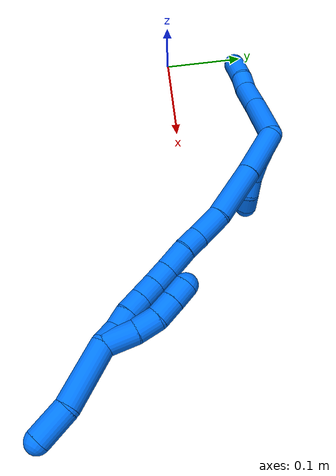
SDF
<sdf version="1.7">
 <world name="default">
  <model name="14">
   <static>0</static>
   <link name="14">
    <collision name="collision-cylinder-e_1_2_8">
     <pose>-0.012714 -0.015619 -0.021183 2.50625 -0.450024 -1.21623</pose>
     <geometry><cylinder><radius>0.0125</radius><length>0.058457</length></cylinder></geometry>
     <surface>
      <friction><ode><mu>1.16</mu><mu2>1.16</mu2><slip1>0</slip1><slip2>0</slip2></ode></friction>
      <contact><ode><kp>1e+06</kp><kd>1</kd><max_vel>0</max_vel><min_depth>0.001</min_depth></ode></contact>
     </surface>
    </collision>
    <visual name="visual-cylinder-e_1_2_8">
     <pose>-0.012714 -0.015619 -0.021183 2.50625 -0.450024 -1.21623</pose>
     <geometry><cylinder><radius>0.0125</radius><length>0.058457</length></cylinder></geometry>
     <material><ambient>0 0.462745 1 1</ambient></material>
    </visual>
    <collision name="collision-cylinder-e_2_8_9">
     <pose>-0.034335 -0.041021 -0.055546 2.50307 -0.497196 -1.30973</pose>
     <geometry><cylinder><radius>0.0125</radius><length>0.037351</length></cylinder></geometry>
     <surface>
      <friction><ode><mu>1.16</mu><mu2>1.16</mu2><slip1>0</slip1><slip2>0</slip2></ode></friction>
      <contact><ode><kp>1e+06</kp><kd>1</kd><max_vel>0</max_vel><min_depth>0.001</min_depth></ode></contact>
     </surface>
    </collision>
    <visual name="visual-cylinder-e_2_8_9">
     <pose>-0.034335 -0.041021 -0.055546 2.50307 -0.497196 -1.30973</pose>
     <geometry><cylinder><radius>0.0125</radius><length>0.037351</length></cylinder></geometry>
     <material><ambient>0 0.462745 1 1</ambient></material>
    </visual>
    <collision name="collision-cylinder-e_3_9_10">
     <pose>-0.048857 -0.053924 -0.076773 2.77163 -0.576716 -2.01604</pose>
     <geometry><cylinder><radius>0.0125</radius><length>0.020592</length></cylinder></geometry>
     <surface>
      <friction><ode><mu>1.16</mu><mu2>1.16</mu2><slip1>0</slip1><slip2>0</slip2></ode></friction>
      <contact><ode><kp>1e+06</kp><kd>1</kd><max_vel>0</max_vel><min_depth>0.001</min_depth></ode></contact>
     </surface>
    </collision>
    <visual name="visual-cylinder-e_3_9_10">
     <pose>-0.048857 -0.053924 -0.076773 2.77163 -0.576716 -2.01604</pose>
     <geometry><cylinder><radius>0.0125</radius><length>0.020592</length></cylinder></geometry>
     <material><ambient>0 0.462745 1 1</ambient></material>
    </visual>
    <collision name="collision-cylinder-e_4_10_6">
     <pose>-0.062411 -0.065516 -0.096962 2.53246 -0.492272 -1.34852</pose>
     <geometry><cylinder><radius>0.0125</radius><length>0.0336</length></cylinder></geometry>
     <surface>
      <friction><ode><mu>1.16</mu><mu2>1.16</mu2><slip1>0</slip1><slip2>0</slip2></ode></friction>
      <contact><ode><kp>1e+06</kp><kd>1</kd><max_vel>0</max_vel><min_depth>0.001</min_depth></ode></contact>
     </surface>
    </collision>
    <visual name="visual-cylinder-e_4_10_6">
     <pose>-0.062411 -0.065516 -0.096962 2.53246 -0.492272 -1.34852</pose>
     <geometry><cylinder><radius>0.0125</radius><length>0.0336</length></cylinder></geometry>
     <material><ambient>0 0.462745 1 1</ambient></material>
    </visual>
    <collision name="collision-cylinder-e_1_2_11">
     <pose>0.002321 -0.008817 0.004107 1.13488 0.234279 0.149728</pose>
     <geometry><cylinder><radius>0.0125</radius><length>0.02</length></cylinder></geometry>
     <surface>
      <friction><ode><mu>1.16</mu><mu2>1.16</mu2><slip1>0</slip1><slip2>0</slip2></ode></friction>
      <contact><ode><kp>1e+06</kp><kd>1</kd><max_vel>0</max_vel><min_depth>0.001</min_depth></ode></contact>
     </surface>
    </collision>
    <visual name="visual-cylinder-e_1_2_11">
     <pose>0.002321 -0.008817 0.004107 1.13488 0.234279 0.149728</pose>
     <geometry><cylinder><radius>0.0125</radius><length>0.02</length></cylinder></geometry>
     <material><ambient>0 0.462745 1 1</ambient></material>
    </visual>
    <collision name="collision-cylinder-e_2_11_12">
     <pose>0.00734 -0.025986 0.013007 1.04984 0.27311 0.158817</pose>
     <geometry><cylinder><radius>0.0125</radius><length>0.02</length></cylinder></geometry>
     <surface>
      <friction><ode><mu>1.16</mu><mu2>1.16</mu2><slip1>0</slip1><slip2>0</slip2></ode></friction>
      <contact><ode><kp>1e+06</kp><kd>1</kd><max_vel>0</max_vel><min_depth>0.001</min_depth></ode></contact>
     </surface>
    </collision>
    <visual name="visual-cylinder-e_2_11_12">
     <pose>0.00734 -0.025986 0.013007 1.04984 0.27311 0.158817</pose>
     <geometry><cylinder><radius>0.0125</radius><length>0.02</length></cylinder></geometry>
     <material><ambient>0 0.462745 1 1</ambient></material>
    </visual>
    <collision name="collision-cylinder-e_3_12_13">
     <pose>0.013408 -0.041724 0.023638 0.901882 0.343778 0.167728</pose>
     <geometry><cylinder><radius>0.0125</radius><length>0.02</length></cylinder></geometry>
     <surface>
      <friction><ode><mu>1.16</mu><mu2>1.16</mu2><slip1>0</slip1><slip2>0</slip2></ode></friction>
      <contact><ode><kp>1e+06</kp><kd>1</kd><max_vel>0</max_vel><min_depth>0.001</min_depth></ode></contact>
     </surface>
    </collision>
    <visual name="visual-cylinder-e_3_12_13">
     <pose>0.013408 -0.041724 0.023638 0.901882 0.343778 0.167728</pose>
     <geometry><cylinder><radius>0.0125</radius><length>0.02</length></cylinder></geometry>
     <material><ambient>0 0.462745 1 1</ambient></material>
    </visual>
    <collision name="collision-cylinder-e_4_13_14">
     <pose>0.021413 -0.055761 0.035332 0.848923 0.481951 0.22122</pose>
     <geometry><cylinder><radius>0.0125</radius><length>0.02</length></cylinder></geometry>
     <surface>
      <friction><ode><mu>1.16</mu><mu2>1.16</mu2><slip1>0</slip1><slip2>0</slip2></ode></friction>
      <contact><ode><kp>1e+06</kp><kd>1</kd><max_vel>0</max_vel><min_depth>0.001</min_depth></ode></contact>
     </surface>
    </collision>
    <visual name="visual-cylinder-e_4_13_14">
     <pose>0.021413 -0.055761 0.035332 0.848923 0.481951 0.22122</pose>
     <geometry><cylinder><radius>0.0125</radius><length>0.02</length></cylinder></geometry>
     <material><ambient>0 0.462745 1 1</ambient></material>
    </visual>
    <collision name="collision-cylinder-e_5_14_5">
     <pose>0.030542 -0.070838 0.044155 1.23209 0.46604 0.332929</pose>
     <geometry><cylinder><radius>0.0125</radius><length>0.02</length></cylinder></geometry>
     <surface>
      <friction><ode><mu>1.16</mu><mu2>1.16</mu2><slip1>0</slip1><slip2>0</slip2></ode></friction>
      <contact><ode><kp>1e+06</kp><kd>1</kd><max_vel>0</max_vel><min_depth>0.001</min_depth></ode></contact>
     </surface>
    </collision>
    <visual name="visual-cylinder-e_5_14_5">
     <pose>0.030542 -0.070838 0.044155 1.23209 0.46604 0.332929</pose>
     <geometry><cylinder><radius>0.0125</radius><length>0.02</length></cylinder></geometry>
     <material><ambient>0 0.462745 1 1</ambient></material>
    </visual>
    <collision name="collision-cylinder-e_1_2_15">
     <pose>-0.000306 -0.000765 0.028367 0.026963 -0.010787 -0.000145</pose>
     <geometry><cylinder><radius>0.0125</radius><length>0.056759</length></cylinder></geometry>
     <surface>
      <friction><ode><mu>1.16</mu><mu2>1.16</mu2><slip1>0</slip1><slip2>0</slip2></ode></friction>
      <contact><ode><kp>1e+06</kp><kd>1</kd><max_vel>0</max_vel><min_depth>0.001</min_depth></ode></contact>
     </surface>
    </collision>
    <visual name="visual-cylinder-e_1_2_15">
     <pose>-0.000306 -0.000765 0.028367 0.026963 -0.010787 -0.000145</pose>
     <geometry><cylinder><radius>0.0125</radius><length>0.056759</length></cylinder></geometry>
     <material><ambient>0 0.462745 1 1</ambient></material>
    </visual>
    <collision name="collision-cylinder-e_2_15_16">
     <pose>-0.002284 -0.003312 0.087596 0.057663 -0.054031 -0.001559</pose>
     <geometry><cylinder><radius>0.0125</radius><length>0.061916</length></cylinder></geometry>
     <surface>
      <friction><ode><mu>1.16</mu><mu2>1.16</mu2><slip1>0</slip1><slip2>0</slip2></ode></friction>
      <contact><ode><kp>1e+06</kp><kd>1</kd><max_vel>0</max_vel><min_depth>0.001</min_depth></ode></contact>
     </surface>
    </collision>
    <visual name="visual-cylinder-e_2_15_16">
     <pose>-0.002284 -0.003312 0.087596 0.057663 -0.054031 -0.001559</pose>
     <geometry><cylinder><radius>0.0125</radius><length>0.061916</length></cylinder></geometry>
     <material><ambient>0 0.462745 1 1</ambient></material>
    </visual>
    <collision name="collision-cylinder-e_3_16_17">
     <pose>-0.007265 -0.007786 0.134197 0.169443 -0.20436 -0.017415</pose>
     <geometry><cylinder><radius>0.0125</radius><length>0.032615</length></cylinder></geometry>
     <surface>
      <friction><ode><mu>1.16</mu><mu2>1.16</mu2><slip1>0</slip1><slip2>0</slip2></ode></friction>
      <contact><ode><kp>1e+06</kp><kd>1</kd><max_vel>0</max_vel><min_depth>0.001</min_depth></ode></contact>
     </surface>
    </collision>
    <visual name="visual-cylinder-e_3_16_17">
     <pose>-0.007265 -0.007786 0.134197 0.169443 -0.20436 -0.017415</pose>
     <geometry><cylinder><radius>0.0125</radius><length>0.032615</length></cylinder></geometry>
     <material><ambient>0 0.462745 1 1</ambient></material>
    </visual>
    <collision name="collision-cylinder-e_4_17_18">
     <pose>-0.013064 -0.01101 0.159963 0.052925 -0.243026 -0.006464</pose>
     <geometry><cylinder><radius>0.0125</radius><length>0.020689</length></cylinder></geometry>
     <surface>
      <friction><ode><mu>1.16</mu><mu2>1.16</mu2><slip1>0</slip1><slip2>0</slip2></ode></friction>
      <contact><ode><kp>1e+06</kp><kd>1</kd><max_vel>0</max_vel><min_depth>0.001</min_depth></ode></contact>
     </surface>
    </collision>
    <visual name="visual-cylinder-e_4_17_18">
     <pose>-0.013064 -0.01101 0.159963 0.052925 -0.243026 -0.006464</pose>
     <geometry><cylinder><radius>0.0125</radius><length>0.020689</length></cylinder></geometry>
     <material><ambient>0 0.462745 1 1</ambient></material>
    </visual>
    <collision name="collision-cylinder-e_5_18_19">
     <pose>-0.017517 -0.013537 0.183456 0.147166 -0.143246 -0.010577</pose>
     <geometry><cylinder><radius>0.0125</radius><length>0.027509</length></cylinder></geometry>
     <surface>
      <friction><ode><mu>1.16</mu><mu2>1.16</mu2><slip1>0</slip1><slip2>0</slip2></ode></friction>
      <contact><ode><kp>1e+06</kp><kd>1</kd><max_vel>0</max_vel><min_depth>0.001</min_depth></ode></contact>
     </surface>
    </collision>
    <visual name="visual-cylinder-e_5_18_19">
     <pose>-0.017517 -0.013537 0.183456 0.147166 -0.143246 -0.010577</pose>
     <geometry><cylinder><radius>0.0125</radius><length>0.027509</length></cylinder></geometry>
     <material><ambient>0 0.462745 1 1</ambient></material>
    </visual>
    <collision name="collision-cylinder-e_6_19_20">
     <pose>-0.021159 -0.016442 0.20681 0.091667 -0.167456 -0.007698</pose>
     <geometry><cylinder><radius>0.0125</radius><length>0.020141</length></cylinder></geometry>
     <surface>
      <friction><ode><mu>1.16</mu><mu2>1.16</mu2><slip1>0</slip1><slip2>0</slip2></ode></friction>
      <contact><ode><kp>1e+06</kp><kd>1</kd><max_vel>0</max_vel><min_depth>0.001</min_depth></ode></contact>
     </surface>
    </collision>
    <visual name="visual-cylinder-e_6_19_20">
     <pose>-0.021159 -0.016442 0.20681 0.091667 -0.167456 -0.007698</pose>
     <geometry><cylinder><radius>0.0125</radius><length>0.020141</length></cylinder></geometry>
     <material><ambient>0 0.462745 1 1</ambient></material>
    </visual>
    <collision name="collision-cylinder-e_7_20_21">
     <pose>-0.024824 -0.017506 0.226653 0.01549 -0.196882 -0.00153</pose>
     <geometry><cylinder><radius>0.0125</radius><length>0.020305</length></cylinder></geometry>
     <surface>
      <friction><ode><mu>1.16</mu><mu2>1.16</mu2><slip1>0</slip1><slip2>0</slip2></ode></friction>
      <contact><ode><kp>1e+06</kp><kd>1</kd><max_vel>0</max_vel><min_depth>0.001</min_depth></ode></contact>
     </surface>
    </collision>
    <visual name="visual-cylinder-e_7_20_21">
     <pose>-0.024824 -0.017506 0.226653 0.01549 -0.196882 -0.00153</pose>
     <geometry><cylinder><radius>0.0125</radius><length>0.020305</length></cylinder></geometry>
     <material><ambient>0 0.462745 1 1</ambient></material>
    </visual>
    <collision name="collision-cylinder-e_8_21_22">
     <pose>-0.028763 -0.017797 0.246447 0.013905 -0.195954 -0.001367</pose>
     <geometry><cylinder><radius>0.0125</radius><length>0.020064</length></cylinder></geometry>
     <surface>
      <friction><ode><mu>1.16</mu><mu2>1.16</mu2><slip1>0</slip1><slip2>0</slip2></ode></friction>
      <contact><ode><kp>1e+06</kp><kd>1</kd><max_vel>0</max_vel><min_depth>0.001</min_depth></ode></contact>
     </surface>
    </collision>
    <visual name="visual-cylinder-e_8_21_22">
     <pose>-0.028763 -0.017797 0.246447 0.013905 -0.195954 -0.001367</pose>
     <geometry><cylinder><radius>0.0125</radius><length>0.020064</length></cylinder></geometry>
     <material><ambient>0 0.462745 1 1</ambient></material>
    </visual>
    <collision name="collision-cylinder-e_9_22_23">
     <pose>-0.030986 -0.017745 0.266282 -0.01881 -0.027026 0.000254</pose>
     <geometry><cylinder><radius>0.0125</radius><length>0.020001</length></cylinder></geometry>
     <surface>
      <friction><ode><mu>1.16</mu><mu2>1.16</mu2><slip1>0</slip1><slip2>0</slip2></ode></friction>
      <contact><ode><kp>1e+06</kp><kd>1</kd><max_vel>0</max_vel><min_depth>0.001</min_depth></ode></contact>
     </surface>
    </collision>
    <visual name="visual-cylinder-e_9_22_23">
     <pose>-0.030986 -0.017745 0.266282 -0.01881 -0.027026 0.000254</pose>
     <geometry><cylinder><radius>0.0125</radius><length>0.020001</length></cylinder></geometry>
     <material><ambient>0 0.462745 1 1</ambient></material>
    </visual>
    <collision name="collision-cylinder-e_10_23_1">
     <pose>-0.033561 -0.015385 0.285763 -0.225174 -0.232553 0.026411</pose>
     <geometry><cylinder><radius>0.0125</radius><length>0.020001</length></cylinder></geometry>
     <surface>
      <friction><ode><mu>1.16</mu><mu2>1.16</mu2><slip1>0</slip1><slip2>0</slip2></ode></friction>
      <contact><ode><kp>1e+06</kp><kd>1</kd><max_vel>0</max_vel><min_depth>0.001</min_depth></ode></contact>
     </surface>
    </collision>
    <visual name="visual-cylinder-e_10_23_1">
     <pose>-0.033561 -0.015385 0.285763 -0.225174 -0.232553 0.026411</pose>
     <geometry><cylinder><radius>0.0125</radius><length>0.020001</length></cylinder></geometry>
     <material><ambient>0 0.462745 1 1</ambient></material>
    </visual>
    <collision name="collision-cylinder-e_1_1_24">
     <pose>-0.035172 -0.012014 0.327176 -0.037506 0.021709 -0.000407</pose>
     <geometry><cylinder><radius>0.0125</radius><length>0.063916</length></cylinder></geometry>
     <surface>
      <friction><ode><mu>1.16</mu><mu2>1.16</mu2><slip1>0</slip1><slip2>0</slip2></ode></friction>
      <contact><ode><kp>1e+06</kp><kd>1</kd><max_vel>0</max_vel><min_depth>0.001</min_depth></ode></contact>
     </surface>
    </collision>
    <visual name="visual-cylinder-e_1_1_24">
     <pose>-0.035172 -0.012014 0.327176 -0.037506 0.021709 -0.000407</pose>
     <geometry><cylinder><radius>0.0125</radius><length>0.063916</length></cylinder></geometry>
     <material><ambient>0 0.462745 1 1</ambient></material>
    </visual>
    <collision name="collision-cylinder-e_2_24_4">
     <pose>-0.037333 -0.014223 0.37659 0.192461 -0.158893 -0.01537</pose>
     <geometry><cylinder><radius>0.0125</radius><length>0.036084</length></cylinder></geometry>
     <surface>
      <friction><ode><mu>1.16</mu><mu2>1.16</mu2><slip1>0</slip1><slip2>0</slip2></ode></friction>
      <contact><ode><kp>1e+06</kp><kd>1</kd><max_vel>0</max_vel><min_depth>0.001</min_depth></ode></contact>
     </surface>
    </collision>
    <visual name="visual-cylinder-e_2_24_4">
     <pose>-0.037333 -0.014223 0.37659 0.192461 -0.158893 -0.01537</pose>
     <geometry><cylinder><radius>0.0125</radius><length>0.036084</length></cylinder></geometry>
     <material><ambient>0 0.462745 1 1</ambient></material>
    </visual>
    <collision name="collision-cylinder-e_1_1_25">
     <pose>-0.026419 -0.010382 0.282301 -2.92638 0.619261 -2.49032</pose>
     <geometry><cylinder><radius>0.0125</radius><length>0.032551</length></cylinder></geometry>
     <surface>
      <friction><ode><mu>1.16</mu><mu2>1.16</mu2><slip1>0</slip1><slip2>0</slip2></ode></friction>
      <contact><ode><kp>1e+06</kp><kd>1</kd><max_vel>0</max_vel><min_depth>0.001</min_depth></ode></contact>
     </surface>
    </collision>
    <visual name="visual-cylinder-e_1_1_25">
     <pose>-0.026419 -0.010382 0.282301 -2.92638 0.619261 -2.49032</pose>
     <geometry><cylinder><radius>0.0125</radius><length>0.032551</length></cylinder></geometry>
     <material><ambient>0 0.462745 1 1</ambient></material>
    </visual>
    <collision name="collision-cylinder-e_2_25_26">
     <pose>-0.011809 -0.005309 0.258715 -2.93385 0.443401 -2.27522</pose>
     <geometry><cylinder><radius>0.0125</radius><length>0.024073</length></cylinder></geometry>
     <surface>
      <friction><ode><mu>1.16</mu><mu2>1.16</mu2><slip1>0</slip1><slip2>0</slip2></ode></friction>
      <contact><ode><kp>1e+06</kp><kd>1</kd><max_vel>0</max_vel><min_depth>0.001</min_depth></ode></contact>
     </surface>
    </collision>
    <visual name="visual-cylinder-e_2_25_26">
     <pose>-0.011809 -0.005309 0.258715 -2.93385 0.443401 -2.27522</pose>
     <geometry><cylinder><radius>0.0125</radius><length>0.024073</length></cylinder></geometry>
     <material><ambient>0 0.462745 1 1</ambient></material>
    </visual>
    <collision name="collision-cylinder-e_3_26_27">
     <pose>-0.004645 -0.001908 0.236988 -3.03749 0.177526 -2.08237</pose>
     <geometry><cylinder><radius>0.0125</radius><length>0.022653</length></cylinder></geometry>
     <surface>
      <friction><ode><mu>1.16</mu><mu2>1.16</mu2><slip1>0</slip1><slip2>0</slip2></ode></friction>
      <contact><ode><kp>1e+06</kp><kd>1</kd><max_vel>0</max_vel><min_depth>0.001</min_depth></ode></contact>
     </surface>
    </collision>
    <visual name="visual-cylinder-e_3_26_27">
     <pose>-0.004645 -0.001908 0.236988 -3.03749 0.177526 -2.08237</pose>
     <geometry><cylinder><radius>0.0125</radius><length>0.022653</length></cylinder></geometry>
     <material><ambient>0 0.462745 1 1</ambient></material>
    </visual>
    <collision name="collision-cylinder-e_4_27_3">
     <pose>-0.001023 0.000146 0.215705 -3.05395 0.157146 -2.12534</pose>
     <geometry><cylinder><radius>0.0125</radius><length>0.020724</length></cylinder></geometry>
     <surface>
      <friction><ode><mu>1.16</mu><mu2>1.16</mu2><slip1>0</slip1><slip2>0</slip2></ode></friction>
      <contact><ode><kp>1e+06</kp><kd>1</kd><max_vel>0</max_vel><min_depth>0.001</min_depth></ode></contact>
     </surface>
    </collision>
    <visual name="visual-cylinder-e_4_27_3">
     <pose>-0.001023 0.000146 0.215705 -3.05395 0.157146 -2.12534</pose>
     <geometry><cylinder><radius>0.0125</radius><length>0.020724</length></cylinder></geometry>
     <material><ambient>0 0.462745 1 1</ambient></material>
    </visual>
    <collision name="collision-sphere-3">
     <pose>0.000599 0.001042 0.20551 0 -0 0</pose>
     <geometry><sphere><radius>0.0125</radius></sphere></geometry>
     <surface>
      <friction><ode><mu>1.16</mu><mu2>1.16</mu2><slip1>0</slip1><slip2>0</slip2></ode></friction>
      <contact><ode><kp>1e+06</kp><kd>1</kd><max_vel>0</max_vel><min_depth>0.001</min_depth></ode></contact>
     </surface>
    </collision>
    <visual name="visual-sphere-3">
     <pose>0.000599 0.001042 0.20551 0 -0 0</pose>
     <geometry><sphere><radius>0.0125</radius></sphere></geometry>
     <material><ambient>0 0.462745 1 1</ambient></material>
    </visual>
    <collision name="collision-sphere-27">
     <pose>-0.002644 -0.000749 0.2259 0 -0 0</pose>
     <geometry><sphere><radius>0.0125</radius></sphere></geometry>
     <surface>
      <friction><ode><mu>1.16</mu><mu2>1.16</mu2><slip1>0</slip1><slip2>0</slip2></ode></friction>
      <contact><ode><kp>1e+06</kp><kd>1</kd><max_vel>0</max_vel><min_depth>0.001</min_depth></ode></contact>
     </surface>
    </collision>
    <visual name="visual-sphere-27">
     <pose>-0.002644 -0.000749 0.2259 0 -0 0</pose>
     <geometry><sphere><radius>0.0125</radius></sphere></geometry>
     <material><ambient>0 0.462745 1 1</ambient></material>
    </visual>
    <collision name="collision-sphere-26">
     <pose>-0.006645 -0.003066 0.248076 0 -0 0</pose>
     <geometry><sphere><radius>0.0125</radius></sphere></geometry>
     <surface>
      <friction><ode><mu>1.16</mu><mu2>1.16</mu2><slip1>0</slip1><slip2>0</slip2></ode></friction>
      <contact><ode><kp>1e+06</kp><kd>1</kd><max_vel>0</max_vel><min_depth>0.001</min_depth></ode></contact>
     </surface>
    </collision>
    <visual name="visual-sphere-26">
     <pose>-0.006645 -0.003066 0.248076 0 -0 0</pose>
     <geometry><sphere><radius>0.0125</radius></sphere></geometry>
     <material><ambient>0 0.462745 1 1</ambient></material>
    </visual>
    <collision name="collision-sphere-25">
     <pose>-0.016972 -0.007551 0.269354 0 -0 0</pose>
     <geometry><sphere><radius>0.0125</radius></sphere></geometry>
     <surface>
      <friction><ode><mu>1.16</mu><mu2>1.16</mu2><slip1>0</slip1><slip2>0</slip2></ode></friction>
      <contact><ode><kp>1e+06</kp><kd>1</kd><max_vel>0</max_vel><min_depth>0.001</min_depth></ode></contact>
     </surface>
    </collision>
    <visual name="visual-sphere-25">
     <pose>-0.016972 -0.007551 0.269354 0 -0 0</pose>
     <geometry><sphere><radius>0.0125</radius></sphere></geometry>
     <material><ambient>0 0.462745 1 1</ambient></material>
    </visual>
    <collision name="collision-sphere-4">
     <pose>-0.040188 -0.017631 0.394076 0 -0 0</pose>
     <geometry><sphere><radius>0.0125</radius></sphere></geometry>
     <surface>
      <friction><ode><mu>1.16</mu><mu2>1.16</mu2><slip1>0</slip1><slip2>0</slip2></ode></friction>
      <contact><ode><kp>1e+06</kp><kd>1</kd><max_vel>0</max_vel><min_depth>0.001</min_depth></ode></contact>
     </surface>
    </collision>
    <visual name="visual-sphere-4">
     <pose>-0.040188 -0.017631 0.394076 0 -0 0</pose>
     <geometry><sphere><radius>0.0125</radius></sphere></geometry>
     <material><ambient>0 0.462745 1 1</ambient></material>
    </visual>
    <collision name="collision-sphere-24">
     <pose>-0.034479 -0.010816 0.359104 0 -0 0</pose>
     <geometry><sphere><radius>0.0125</radius></sphere></geometry>
     <surface>
      <friction><ode><mu>1.16</mu><mu2>1.16</mu2><slip1>0</slip1><slip2>0</slip2></ode></friction>
      <contact><ode><kp>1e+06</kp><kd>1</kd><max_vel>0</max_vel><min_depth>0.001</min_depth></ode></contact>
     </surface>
    </collision>
    <visual name="visual-sphere-24">
     <pose>-0.034479 -0.010816 0.359104 0 -0 0</pose>
     <geometry><sphere><radius>0.0125</radius></sphere></geometry>
     <material><ambient>0 0.462745 1 1</ambient></material>
    </visual>
    <collision name="collision-sphere-1">
     <pose>-0.035866 -0.013212 0.295249 0 -0 0</pose>
     <geometry><sphere><radius>0.0125</radius></sphere></geometry>
     <surface>
      <friction><ode><mu>1.16</mu><mu2>1.16</mu2><slip1>0</slip1><slip2>0</slip2></ode></friction>
      <contact><ode><kp>1e+06</kp><kd>1</kd><max_vel>0</max_vel><min_depth>0.001</min_depth></ode></contact>
     </surface>
    </collision>
    <visual name="visual-sphere-1">
     <pose>-0.035866 -0.013212 0.295249 0 -0 0</pose>
     <geometry><sphere><radius>0.0125</radius></sphere></geometry>
     <material><ambient>0 0.462745 1 1</ambient></material>
    </visual>
    <collision name="collision-sphere-23">
     <pose>-0.031256 -0.017557 0.276277 0 -0 0</pose>
     <geometry><sphere><radius>0.0125</radius></sphere></geometry>
     <surface>
      <friction><ode><mu>1.16</mu><mu2>1.16</mu2><slip1>0</slip1><slip2>0</slip2></ode></friction>
      <contact><ode><kp>1e+06</kp><kd>1</kd><max_vel>0</max_vel><min_depth>0.001</min_depth></ode></contact>
     </surface>
    </collision>
    <visual name="visual-sphere-23">
     <pose>-0.031256 -0.017557 0.276277 0 -0 0</pose>
     <geometry><sphere><radius>0.0125</radius></sphere></geometry>
     <material><ambient>0 0.462745 1 1</ambient></material>
    </visual>
    <collision name="collision-sphere-22">
     <pose>-0.030716 -0.017933 0.256286 0 -0 0</pose>
     <geometry><sphere><radius>0.0125</radius></sphere></geometry>
     <surface>
      <friction><ode><mu>1.16</mu><mu2>1.16</mu2><slip1>0</slip1><slip2>0</slip2></ode></friction>
      <contact><ode><kp>1e+06</kp><kd>1</kd><max_vel>0</max_vel><min_depth>0.001</min_depth></ode></contact>
     </surface>
    </collision>
    <visual name="visual-sphere-22">
     <pose>-0.030716 -0.017933 0.256286 0 -0 0</pose>
     <geometry><sphere><radius>0.0125</radius></sphere></geometry>
     <material><ambient>0 0.462745 1 1</ambient></material>
    </visual>
    <collision name="collision-sphere-21">
     <pose>-0.02681 -0.01766 0.236609 0 -0 0</pose>
     <geometry><sphere><radius>0.0125</radius></sphere></geometry>
     <surface>
      <friction><ode><mu>1.16</mu><mu2>1.16</mu2><slip1>0</slip1><slip2>0</slip2></ode></friction>
      <contact><ode><kp>1e+06</kp><kd>1</kd><max_vel>0</max_vel><min_depth>0.001</min_depth></ode></contact>
     </surface>
    </collision>
    <visual name="visual-sphere-21">
     <pose>-0.02681 -0.01766 0.236609 0 -0 0</pose>
     <geometry><sphere><radius>0.0125</radius></sphere></geometry>
     <material><ambient>0 0.462745 1 1</ambient></material>
    </visual>
    <collision name="collision-sphere-11">
     <pose>0.004643 -0.017634 0.008214 0 -0 0</pose>
     <geometry><sphere><radius>0.0125</radius></sphere></geometry>
     <surface>
      <friction><ode><mu>1.16</mu><mu2>1.16</mu2><slip1>0</slip1><slip2>0</slip2></ode></friction>
      <contact><ode><kp>1e+06</kp><kd>1</kd><max_vel>0</max_vel><min_depth>0.001</min_depth></ode></contact>
     </surface>
    </collision>
    <visual name="visual-sphere-11">
     <pose>0.004643 -0.017634 0.008214 0 -0 0</pose>
     <geometry><sphere><radius>0.0125</radius></sphere></geometry>
     <material><ambient>0 0.462745 1 1</ambient></material>
    </visual>
    <collision name="collision-sphere-6">
     <pose>-0.070352 -0.073987 -0.109105 0 -0 0</pose>
     <geometry><sphere><radius>0.0125</radius></sphere></geometry>
     <surface>
      <friction><ode><mu>1.16</mu><mu2>1.16</mu2><slip1>0</slip1><slip2>0</slip2></ode></friction>
      <contact><ode><kp>1e+06</kp><kd>1</kd><max_vel>0</max_vel><min_depth>0.001</min_depth></ode></contact>
     </surface>
    </collision>
    <visual name="visual-sphere-6">
     <pose>-0.070352 -0.073987 -0.109105 0 -0 0</pose>
     <geometry><sphere><radius>0.0125</radius></sphere></geometry>
     <material><ambient>0 0.462745 1 1</ambient></material>
    </visual>
    <collision name="collision-sphere-10">
     <pose>-0.054471 -0.057045 -0.084819 0 -0 0</pose>
     <geometry><sphere><radius>0.0125</radius></sphere></geometry>
     <surface>
      <friction><ode><mu>1.16</mu><mu2>1.16</mu2><slip1>0</slip1><slip2>0</slip2></ode></friction>
      <contact><ode><kp>1e+06</kp><kd>1</kd><max_vel>0</max_vel><min_depth>0.001</min_depth></ode></contact>
     </surface>
    </collision>
    <visual name="visual-sphere-10">
     <pose>-0.054471 -0.057045 -0.084819 0 -0 0</pose>
     <geometry><sphere><radius>0.0125</radius></sphere></geometry>
     <material><ambient>0 0.462745 1 1</ambient></material>
    </visual>
    <collision name="collision-sphere-9">
     <pose>-0.043243 -0.050804 -0.068726 0 -0 0</pose>
     <geometry><sphere><radius>0.0125</radius></sphere></geometry>
     <surface>
      <friction><ode><mu>1.16</mu><mu2>1.16</mu2><slip1>0</slip1><slip2>0</slip2></ode></friction>
      <contact><ode><kp>1e+06</kp><kd>1</kd><max_vel>0</max_vel><min_depth>0.001</min_depth></ode></contact>
     </surface>
    </collision>
    <visual name="visual-sphere-9">
     <pose>-0.043243 -0.050804 -0.068726 0 -0 0</pose>
     <geometry><sphere><radius>0.0125</radius></sphere></geometry>
     <material><ambient>0 0.462745 1 1</ambient></material>
    </visual>
    <collision name="collision-sphere-2">
     <geometry><sphere><radius>0.0125</radius></sphere></geometry>
     <surface>
      <friction><ode><mu>1.16</mu><mu2>1.16</mu2><slip1>0</slip1><slip2>0</slip2></ode></friction>
      <contact><ode><kp>1e+06</kp><kd>1</kd><max_vel>0</max_vel><min_depth>0.001</min_depth></ode></contact>
     </surface>
    </collision>
    <visual name="visual-sphere-2">
     <geometry><sphere><radius>0.0125</radius></sphere></geometry>
     <material><ambient>0 0.462745 1 1</ambient></material>
    </visual>
    <collision name="collision-sphere-19">
     <pose>-0.019481 -0.015534 0.196922 0 -0 0</pose>
     <geometry><sphere><radius>0.0125</radius></sphere></geometry>
     <surface>
      <friction><ode><mu>1.16</mu><mu2>1.16</mu2><slip1>0</slip1><slip2>0</slip2></ode></friction>
      <contact><ode><kp>1e+06</kp><kd>1</kd><max_vel>0</max_vel><min_depth>0.001</min_depth></ode></contact>
     </surface>
    </collision>
    <visual name="visual-sphere-19">
     <pose>-0.019481 -0.015534 0.196922 0 -0 0</pose>
     <geometry><sphere><radius>0.0125</radius></sphere></geometry>
     <material><ambient>0 0.462745 1 1</ambient></material>
    </visual>
    <collision name="collision-sphere-8">
     <pose>-0.025428 -0.031237 -0.042365 0 -0 0</pose>
     <geometry><sphere><radius>0.0125</radius></sphere></geometry>
     <surface>
      <friction><ode><mu>1.16</mu><mu2>1.16</mu2><slip1>0</slip1><slip2>0</slip2></ode></friction>
      <contact><ode><kp>1e+06</kp><kd>1</kd><max_vel>0</max_vel><min_depth>0.001</min_depth></ode></contact>
     </surface>
    </collision>
    <visual name="visual-sphere-8">
     <pose>-0.025428 -0.031237 -0.042365 0 -0 0</pose>
     <geometry><sphere><radius>0.0125</radius></sphere></geometry>
     <material><ambient>0 0.462745 1 1</ambient></material>
    </visual>
    <collision name="collision-sphere-12">
     <pose>0.010037 -0.034338 0.017799 0 -0 0</pose>
     <geometry><sphere><radius>0.0125</radius></sphere></geometry>
     <surface>
      <friction><ode><mu>1.16</mu><mu2>1.16</mu2><slip1>0</slip1><slip2>0</slip2></ode></friction>
      <contact><ode><kp>1e+06</kp><kd>1</kd><max_vel>0</max_vel><min_depth>0.001</min_depth></ode></contact>
     </surface>
    </collision>
    <visual name="visual-sphere-12">
     <pose>0.010037 -0.034338 0.017799 0 -0 0</pose>
     <geometry><sphere><radius>0.0125</radius></sphere></geometry>
     <material><ambient>0 0.462745 1 1</ambient></material>
    </visual>
    <collision name="collision-sphere-13">
     <pose>0.016778 -0.04911 0.029476 0 -0 0</pose>
     <geometry><sphere><radius>0.0125</radius></sphere></geometry>
     <surface>
      <friction><ode><mu>1.16</mu><mu2>1.16</mu2><slip1>0</slip1><slip2>0</slip2></ode></friction>
      <contact><ode><kp>1e+06</kp><kd>1</kd><max_vel>0</max_vel><min_depth>0.001</min_depth></ode></contact>
     </surface>
    </collision>
    <visual name="visual-sphere-13">
     <pose>0.016778 -0.04911 0.029476 0 -0 0</pose>
     <geometry><sphere><radius>0.0125</radius></sphere></geometry>
     <material><ambient>0 0.462745 1 1</ambient></material>
    </visual>
    <collision name="collision-sphere-14">
     <pose>0.026048 -0.062412 0.041187 0 -0 0</pose>
     <geometry><sphere><radius>0.0125</radius></sphere></geometry>
     <surface>
      <friction><ode><mu>1.16</mu><mu2>1.16</mu2><slip1>0</slip1><slip2>0</slip2></ode></friction>
      <contact><ode><kp>1e+06</kp><kd>1</kd><max_vel>0</max_vel><min_depth>0.001</min_depth></ode></contact>
     </surface>
    </collision>
    <visual name="visual-sphere-14">
     <pose>0.026048 -0.062412 0.041187 0 -0 0</pose>
     <geometry><sphere><radius>0.0125</radius></sphere></geometry>
     <material><ambient>0 0.462745 1 1</ambient></material>
    </visual>
    <collision name="collision-sphere-5">
     <pose>0.035036 -0.079264 0.047124 0 -0 0</pose>
     <geometry><sphere><radius>0.0125</radius></sphere></geometry>
     <surface>
      <friction><ode><mu>1.16</mu><mu2>1.16</mu2><slip1>0</slip1><slip2>0</slip2></ode></friction>
      <contact><ode><kp>1e+06</kp><kd>1</kd><max_vel>0</max_vel><min_depth>0.001</min_depth></ode></contact>
     </surface>
    </collision>
    <visual name="visual-sphere-5">
     <pose>0.035036 -0.079264 0.047124 0 -0 0</pose>
     <geometry><sphere><radius>0.0125</radius></sphere></geometry>
     <material><ambient>0 0.462745 1 1</ambient></material>
    </visual>
    <collision name="collision-sphere-15">
     <pose>-0.000612 -0.00153 0.056735 0 -0 0</pose>
     <geometry><sphere><radius>0.0125</radius></sphere></geometry>
     <surface>
      <friction><ode><mu>1.16</mu><mu2>1.16</mu2><slip1>0</slip1><slip2>0</slip2></ode></friction>
      <contact><ode><kp>1e+06</kp><kd>1</kd><max_vel>0</max_vel><min_depth>0.001</min_depth></ode></contact>
     </surface>
    </collision>
    <visual name="visual-sphere-15">
     <pose>-0.000612 -0.00153 0.056735 0 -0 0</pose>
     <geometry><sphere><radius>0.0125</radius></sphere></geometry>
     <material><ambient>0 0.462745 1 1</ambient></material>
    </visual>
    <collision name="collision-sphere-16">
     <pose>-0.003956 -0.005093 0.118457 0 -0 0</pose>
     <geometry><sphere><radius>0.0125</radius></sphere></geometry>
     <surface>
      <friction><ode><mu>1.16</mu><mu2>1.16</mu2><slip1>0</slip1><slip2>0</slip2></ode></friction>
      <contact><ode><kp>1e+06</kp><kd>1</kd><max_vel>0</max_vel><min_depth>0.001</min_depth></ode></contact>
     </surface>
    </collision>
    <visual name="visual-sphere-16">
     <pose>-0.003956 -0.005093 0.118457 0 -0 0</pose>
     <geometry><sphere><radius>0.0125</radius></sphere></geometry>
     <material><ambient>0 0.462745 1 1</ambient></material>
    </visual>
    <collision name="collision-sphere-17">
     <pose>-0.010575 -0.010479 0.149937 0 -0 0</pose>
     <geometry><sphere><radius>0.0125</radius></sphere></geometry>
     <surface>
      <friction><ode><mu>1.16</mu><mu2>1.16</mu2><slip1>0</slip1><slip2>0</slip2></ode></friction>
      <contact><ode><kp>1e+06</kp><kd>1</kd><max_vel>0</max_vel><min_depth>0.001</min_depth></ode></contact>
     </surface>
    </collision>
    <visual name="visual-sphere-17">
     <pose>-0.010575 -0.010479 0.149937 0 -0 0</pose>
     <geometry><sphere><radius>0.0125</radius></sphere></geometry>
     <material><ambient>0 0.462745 1 1</ambient></material>
    </visual>
    <collision name="collision-sphere-18">
     <pose>-0.015554 -0.011541 0.16999 0 -0 0</pose>
     <geometry><sphere><radius>0.0125</radius></sphere></geometry>
     <surface>
      <friction><ode><mu>1.16</mu><mu2>1.16</mu2><slip1>0</slip1><slip2>0</slip2></ode></friction>
      <contact><ode><kp>1e+06</kp><kd>1</kd><max_vel>0</max_vel><min_depth>0.001</min_depth></ode></contact>
     </surface>
    </collision>
    <visual name="visual-sphere-18">
     <pose>-0.015554 -0.011541 0.16999 0 -0 0</pose>
     <geometry><sphere><radius>0.0125</radius></sphere></geometry>
     <material><ambient>0 0.462745 1 1</ambient></material>
    </visual>
    <collision name="collision-sphere-20">
     <pose>-0.022838 -0.017351 0.216698 0 -0 0</pose>
     <geometry><sphere><radius>0.0125</radius></sphere></geometry>
     <surface>
      <friction><ode><mu>1.16</mu><mu2>1.16</mu2><slip1>0</slip1><slip2>0</slip2></ode></friction>
      <contact><ode><kp>1e+06</kp><kd>1</kd><max_vel>0</max_vel><min_depth>0.001</min_depth></ode></contact>
     </surface>
    </collision>
    <visual name="visual-sphere-20">
     <pose>-0.022838 -0.017351 0.216698 0 -0 0</pose>
     <geometry><sphere><radius>0.0125</radius></sphere></geometry>
     <material><ambient>0 0.462745 1 1</ambient></material>
    </visual>
    <inertial>
     <pose>-0.016587 -0.019221 0.131373 0 -0 0</pose>
     <mass>0.75</mass>
     <inertia><ixx>5.9e-05</ixx><ixy>0</ixy><ixz>0</ixz><iyy>5.3e-05</iyy><iyz>0</iyz><izz>5.4e-05</izz></inertia>
    </inertial>
   </link>
   <pose>0.169207 0.095193 0.140551 1.3327 0.277834 0.8669</pose>
  </model>
 </world>
</sdf>
